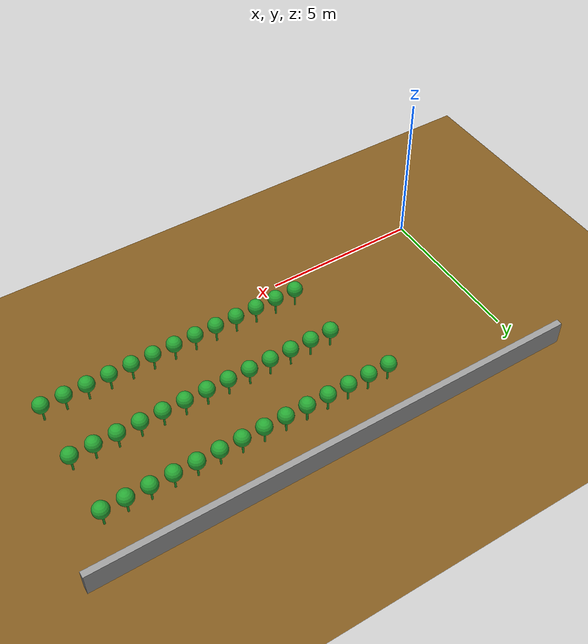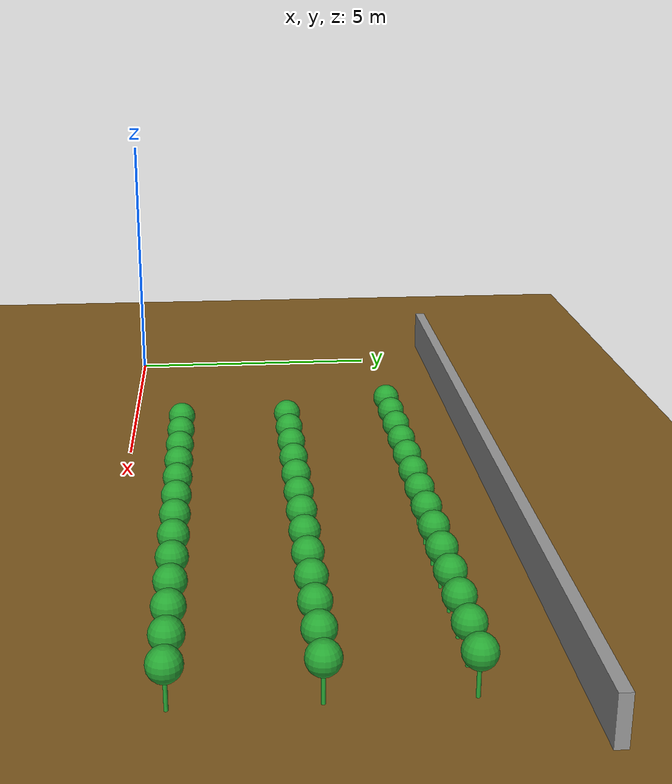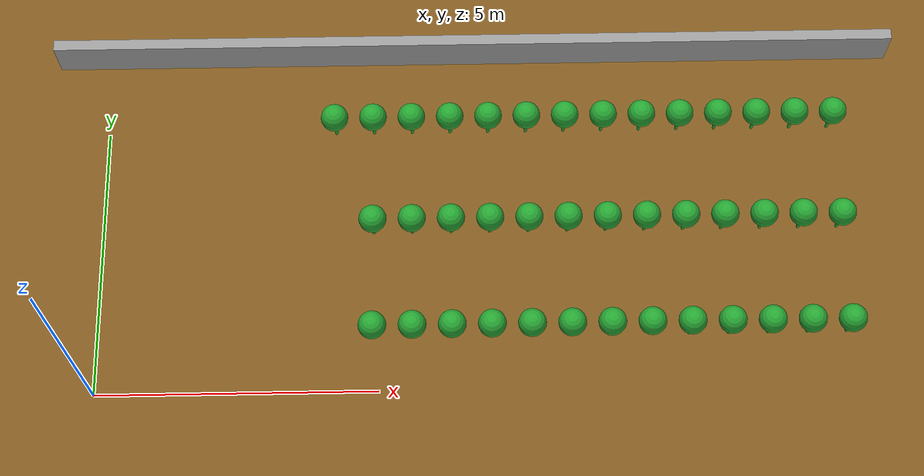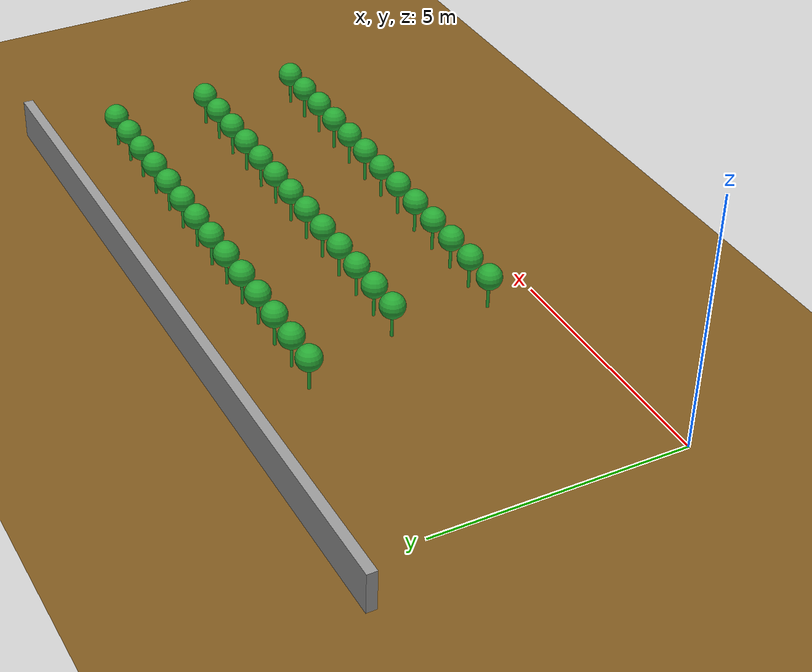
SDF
<sdf version="1.7">
 <world name="crop_field">
  <model name="ground_plane">
   <static>1</static>
   <link name="link">
    <collision name="collision">
     <geometry><plane><normal>0 0 1</normal><size>100 100</size></plane></geometry>
     <surface><friction><ode><mu>100</mu><mu2>50</mu2></ode></friction></surface>
    </collision>
    <visual name="visual">
     <cast_shadows>0</cast_shadows>
     <geometry><plane><normal>0 0 1</normal><size>100 100</size></plane></geometry>
     <material><ambient>0.45 0.30 0.10 1</ambient><diffuse>0.50 0.35 0.12 1</diffuse></material>
    </visual>
   </link>
  </model>
  <model name="row4_plant_07">
   <static>1</static>
   <link name="link">
    <collision name="c">
     <geometry><cylinder><radius>0.05</radius><length>0.8</length></cylinder></geometry>
    </collision>
    <visual name="stem">
     <pose>0 0 -0.125 0 0 0</pose>
     <geometry><cylinder><radius>0.03</radius><length>0.55</length></cylinder></geometry>
     <material>
      <script><uri>file://media/materials/scripts/gazebo.material</uri><name>Gazebo/Green</name></script>
     </material>
    </visual>
    <visual name="canopy">
     <pose>0 0 0.275 0 0 0</pose>
     <geometry><sphere><radius>0.25</radius></sphere></geometry>
     <material>
      <script><uri>file://media/materials/scripts/gazebo.material</uri><name>Gazebo/Green</name></script>
     </material>
    </visual>
   </link>
   <pose>4.9 1.0 0.4 0 0 0</pose>
  </model>
  <model name="row4_plant_08">
   <static>1</static>
   <link name="link">
    <collision name="c">
     <geometry><cylinder><radius>0.05</radius><length>0.8</length></cylinder></geometry>
    </collision>
    <visual name="stem">
     <pose>0 0 -0.125 0 0 0</pose>
     <geometry><cylinder><radius>0.03</radius><length>0.55</length></cylinder></geometry>
     <material>
      <script><uri>file://media/materials/scripts/gazebo.material</uri><name>Gazebo/Green</name></script>
     </material>
    </visual>
    <visual name="canopy">
     <pose>0 0 0.275 0 0 0</pose>
     <geometry><sphere><radius>0.25</radius></sphere></geometry>
     <material>
      <script><uri>file://media/materials/scripts/gazebo.material</uri><name>Gazebo/Green</name></script>
     </material>
    </visual>
   </link>
   <pose>5.6 1.0 0.4 0 0 0</pose>
  </model>
  <model name="row4_plant_09">
   <static>1</static>
   <link name="link">
    <collision name="c">
     <geometry><cylinder><radius>0.05</radius><length>0.8</length></cylinder></geometry>
    </collision>
    <visual name="stem">
     <pose>0 0 -0.125 0 0 0</pose>
     <geometry><cylinder><radius>0.03</radius><length>0.55</length></cylinder></geometry>
     <material>
      <script><uri>file://media/materials/scripts/gazebo.material</uri><name>Gazebo/Green</name></script>
     </material>
    </visual>
    <visual name="canopy">
     <pose>0 0 0.275 0 0 0</pose>
     <geometry><sphere><radius>0.25</radius></sphere></geometry>
     <material>
      <script><uri>file://media/materials/scripts/gazebo.material</uri><name>Gazebo/Green</name></script>
     </material>
    </visual>
   </link>
   <pose>6.3 1.0 0.4 0 0 0</pose>
  </model>
  <model name="row4_plant_10">
   <static>1</static>
   <link name="link">
    <collision name="c">
     <geometry><cylinder><radius>0.05</radius><length>0.8</length></cylinder></geometry>
    </collision>
    <visual name="stem">
     <pose>0 0 -0.125 0 0 0</pose>
     <geometry><cylinder><radius>0.03</radius><length>0.55</length></cylinder></geometry>
     <material>
      <script><uri>file://media/materials/scripts/gazebo.material</uri><name>Gazebo/Green</name></script>
     </material>
    </visual>
    <visual name="canopy">
     <pose>0 0 0.275 0 0 0</pose>
     <geometry><sphere><radius>0.25</radius></sphere></geometry>
     <material>
      <script><uri>file://media/materials/scripts/gazebo.material</uri><name>Gazebo/Green</name></script>
     </material>
    </visual>
   </link>
   <pose>7.0 1.0 0.4 0 0 0</pose>
  </model>
  <model name="row4_plant_11">
   <static>1</static>
   <link name="link">
    <collision name="c">
     <geometry><cylinder><radius>0.05</radius><length>0.8</length></cylinder></geometry>
    </collision>
    <visual name="stem">
     <pose>0 0 -0.125 0 0 0</pose>
     <geometry><cylinder><radius>0.03</radius><length>0.55</length></cylinder></geometry>
     <material>
      <script><uri>file://media/materials/scripts/gazebo.material</uri><name>Gazebo/Green</name></script>
     </material>
    </visual>
    <visual name="canopy">
     <pose>0 0 0.275 0 0 0</pose>
     <geometry><sphere><radius>0.25</radius></sphere></geometry>
     <material>
      <script><uri>file://media/materials/scripts/gazebo.material</uri><name>Gazebo/Green</name></script>
     </material>
    </visual>
   </link>
   <pose>7.7 1.0 0.4 0 0 0</pose>
  </model>
  <model name="row4_plant_12">
   <static>1</static>
   <link name="link">
    <collision name="c">
     <geometry><cylinder><radius>0.05</radius><length>0.8</length></cylinder></geometry>
    </collision>
    <visual name="stem">
     <pose>0 0 -0.125 0 0 0</pose>
     <geometry><cylinder><radius>0.03</radius><length>0.55</length></cylinder></geometry>
     <material>
      <script><uri>file://media/materials/scripts/gazebo.material</uri><name>Gazebo/Green</name></script>
     </material>
    </visual>
    <visual name="canopy">
     <pose>0 0 0.275 0 0 0</pose>
     <geometry><sphere><radius>0.25</radius></sphere></geometry>
     <material>
      <script><uri>file://media/materials/scripts/gazebo.material</uri><name>Gazebo/Green</name></script>
     </material>
    </visual>
   </link>
   <pose>8.4 1.0 0.4 0 0 0</pose>
  </model>
  <model name="row4_plant_13">
   <static>1</static>
   <link name="link">
    <collision name="c">
     <geometry><cylinder><radius>0.05</radius><length>0.8</length></cylinder></geometry>
    </collision>
    <visual name="stem">
     <pose>0 0 -0.125 0 0 0</pose>
     <geometry><cylinder><radius>0.03</radius><length>0.55</length></cylinder></geometry>
     <material>
      <script><uri>file://media/materials/scripts/gazebo.material</uri><name>Gazebo/Green</name></script>
     </material>
    </visual>
    <visual name="canopy">
     <pose>0 0 0.275 0 0 0</pose>
     <geometry><sphere><radius>0.25</radius></sphere></geometry>
     <material>
      <script><uri>file://media/materials/scripts/gazebo.material</uri><name>Gazebo/Green</name></script>
     </material>
    </visual>
   </link>
   <pose>9.1 1.0 0.4 0 0 0</pose>
  </model>
  <model name="row4_plant_14">
   <static>1</static>
   <link name="link">
    <collision name="c">
     <geometry><cylinder><radius>0.05</radius><length>0.8</length></cylinder></geometry>
    </collision>
    <visual name="stem">
     <pose>0 0 -0.125 0 0 0</pose>
     <geometry><cylinder><radius>0.03</radius><length>0.55</length></cylinder></geometry>
     <material>
      <script><uri>file://media/materials/scripts/gazebo.material</uri><name>Gazebo/Green</name></script>
     </material>
    </visual>
    <visual name="canopy">
     <pose>0 0 0.275 0 0 0</pose>
     <geometry><sphere><radius>0.25</radius></sphere></geometry>
     <material>
      <script><uri>file://media/materials/scripts/gazebo.material</uri><name>Gazebo/Green</name></script>
     </material>
    </visual>
   </link>
   <pose>9.8 1.0 0.4 0 0 0</pose>
  </model>
  <model name="row4_plant_15">
   <static>1</static>
   <link name="link">
    <collision name="c">
     <geometry><cylinder><radius>0.05</radius><length>0.8</length></cylinder></geometry>
    </collision>
    <visual name="stem">
     <pose>0 0 -0.125 0 0 0</pose>
     <geometry><cylinder><radius>0.03</radius><length>0.55</length></cylinder></geometry>
     <material>
      <script><uri>file://media/materials/scripts/gazebo.material</uri><name>Gazebo/Green</name></script>
     </material>
    </visual>
    <visual name="canopy">
     <pose>0 0 0.275 0 0 0</pose>
     <geometry><sphere><radius>0.25</radius></sphere></geometry>
     <material>
      <script><uri>file://media/materials/scripts/gazebo.material</uri><name>Gazebo/Green</name></script>
     </material>
    </visual>
   </link>
   <pose>10.5 1.0 0.4 0 0 0</pose>
  </model>
  <model name="row4_plant_16">
   <static>1</static>
   <link name="link">
    <collision name="c">
     <geometry><cylinder><radius>0.05</radius><length>0.8</length></cylinder></geometry>
    </collision>
    <visual name="stem">
     <pose>0 0 -0.125 0 0 0</pose>
     <geometry><cylinder><radius>0.03</radius><length>0.55</length></cylinder></geometry>
     <material>
      <script><uri>file://media/materials/scripts/gazebo.material</uri><name>Gazebo/Green</name></script>
     </material>
    </visual>
    <visual name="canopy">
     <pose>0 0 0.275 0 0 0</pose>
     <geometry><sphere><radius>0.25</radius></sphere></geometry>
     <material>
      <script><uri>file://media/materials/scripts/gazebo.material</uri><name>Gazebo/Green</name></script>
     </material>
    </visual>
   </link>
   <pose>11.2 1.0 0.4 0 0 0</pose>
  </model>
  <model name="row4_plant_17">
   <static>1</static>
   <link name="link">
    <collision name="c">
     <geometry><cylinder><radius>0.05</radius><length>0.8</length></cylinder></geometry>
    </collision>
    <visual name="stem">
     <pose>0 0 -0.125 0 0 0</pose>
     <geometry><cylinder><radius>0.03</radius><length>0.55</length></cylinder></geometry>
     <material>
      <script><uri>file://media/materials/scripts/gazebo.material</uri><name>Gazebo/Green</name></script>
     </material>
    </visual>
    <visual name="canopy">
     <pose>0 0 0.275 0 0 0</pose>
     <geometry><sphere><radius>0.25</radius></sphere></geometry>
     <material>
      <script><uri>file://media/materials/scripts/gazebo.material</uri><name>Gazebo/Green</name></script>
     </material>
    </visual>
   </link>
   <pose>11.9 1.0 0.4 0 0 0</pose>
  </model>
  <model name="row4_plant_18">
   <static>1</static>
   <link name="link">
    <collision name="c">
     <geometry><cylinder><radius>0.05</radius><length>0.8</length></cylinder></geometry>
    </collision>
    <visual name="stem">
     <pose>0 0 -0.125 0 0 0</pose>
     <geometry><cylinder><radius>0.03</radius><length>0.55</length></cylinder></geometry>
     <material>
      <script><uri>file://media/materials/scripts/gazebo.material</uri><name>Gazebo/Green</name></script>
     </material>
    </visual>
    <visual name="canopy">
     <pose>0 0 0.275 0 0 0</pose>
     <geometry><sphere><radius>0.25</radius></sphere></geometry>
     <material>
      <script><uri>file://media/materials/scripts/gazebo.material</uri><name>Gazebo/Green</name></script>
     </material>
    </visual>
   </link>
   <pose>12.6 1.0 0.4 0 0 0</pose>
  </model>
  <model name="row4_plant_19">
   <static>1</static>
   <link name="link">
    <collision name="c">
     <geometry><cylinder><radius>0.05</radius><length>0.8</length></cylinder></geometry>
    </collision>
    <visual name="stem">
     <pose>0 0 -0.125 0 0 0</pose>
     <geometry><cylinder><radius>0.03</radius><length>0.55</length></cylinder></geometry>
     <material>
      <script><uri>file://media/materials/scripts/gazebo.material</uri><name>Gazebo/Green</name></script>
     </material>
    </visual>
    <visual name="canopy">
     <pose>0 0 0.275 0 0 0</pose>
     <geometry><sphere><radius>0.25</radius></sphere></geometry>
     <material>
      <script><uri>file://media/materials/scripts/gazebo.material</uri><name>Gazebo/Green</name></script>
     </material>
    </visual>
   </link>
   <pose>13.3 1.0 0.4 0 0 0</pose>
  </model>
  <model name="row5_plant_07">
   <static>1</static>
   <link name="link">
    <collision name="c">
     <geometry><cylinder><radius>0.05</radius><length>0.8</length></cylinder></geometry>
    </collision>
    <visual name="stem">
     <pose>0 0 -0.125 0 0 0</pose>
     <geometry><cylinder><radius>0.03</radius><length>0.55</length></cylinder></geometry>
     <material>
      <script><uri>file://media/materials/scripts/gazebo.material</uri><name>Gazebo/Green</name></script>
     </material>
    </visual>
    <visual name="canopy">
     <pose>0 0 0.275 0 0 0</pose>
     <geometry><sphere><radius>0.25</radius></sphere></geometry>
     <material>
      <script><uri>file://media/materials/scripts/gazebo.material</uri><name>Gazebo/Green</name></script>
     </material>
    </visual>
   </link>
   <pose>4.9 3.0 0.4 0 0 0</pose>
  </model>
  <model name="row5_plant_08">
   <static>1</static>
   <link name="link">
    <collision name="c">
     <geometry><cylinder><radius>0.05</radius><length>0.8</length></cylinder></geometry>
    </collision>
    <visual name="stem">
     <pose>0 0 -0.125 0 0 0</pose>
     <geometry><cylinder><radius>0.03</radius><length>0.55</length></cylinder></geometry>
     <material>
      <script><uri>file://media/materials/scripts/gazebo.material</uri><name>Gazebo/Green</name></script>
     </material>
    </visual>
    <visual name="canopy">
     <pose>0 0 0.275 0 0 0</pose>
     <geometry><sphere><radius>0.25</radius></sphere></geometry>
     <material>
      <script><uri>file://media/materials/scripts/gazebo.material</uri><name>Gazebo/Green</name></script>
     </material>
    </visual>
   </link>
   <pose>5.6 3.0 0.4 0 0 0</pose>
  </model>
  <model name="row5_plant_09">
   <static>1</static>
   <link name="link">
    <collision name="c">
     <geometry><cylinder><radius>0.05</radius><length>0.8</length></cylinder></geometry>
    </collision>
    <visual name="stem">
     <pose>0 0 -0.125 0 0 0</pose>
     <geometry><cylinder><radius>0.03</radius><length>0.55</length></cylinder></geometry>
     <material>
      <script><uri>file://media/materials/scripts/gazebo.material</uri><name>Gazebo/Green</name></script>
     </material>
    </visual>
    <visual name="canopy">
     <pose>0 0 0.275 0 0 0</pose>
     <geometry><sphere><radius>0.25</radius></sphere></geometry>
     <material>
      <script><uri>file://media/materials/scripts/gazebo.material</uri><name>Gazebo/Green</name></script>
     </material>
    </visual>
   </link>
   <pose>6.3 3.0 0.4 0 0 0</pose>
  </model>
  <model name="row5_plant_10">
   <static>1</static>
   <link name="link">
    <collision name="c">
     <geometry><cylinder><radius>0.05</radius><length>0.8</length></cylinder></geometry>
    </collision>
    <visual name="stem">
     <pose>0 0 -0.125 0 0 0</pose>
     <geometry><cylinder><radius>0.03</radius><length>0.55</length></cylinder></geometry>
     <material>
      <script><uri>file://media/materials/scripts/gazebo.material</uri><name>Gazebo/Green</name></script>
     </material>
    </visual>
    <visual name="canopy">
     <pose>0 0 0.275 0 0 0</pose>
     <geometry><sphere><radius>0.25</radius></sphere></geometry>
     <material>
      <script><uri>file://media/materials/scripts/gazebo.material</uri><name>Gazebo/Green</name></script>
     </material>
    </visual>
   </link>
   <pose>7.0 3.0 0.4 0 0 0</pose>
  </model>
  <model name="row5_plant_11">
   <static>1</static>
   <link name="link">
    <collision name="c">
     <geometry><cylinder><radius>0.05</radius><length>0.8</length></cylinder></geometry>
    </collision>
    <visual name="stem">
     <pose>0 0 -0.125 0 0 0</pose>
     <geometry><cylinder><radius>0.03</radius><length>0.55</length></cylinder></geometry>
     <material>
      <script><uri>file://media/materials/scripts/gazebo.material</uri><name>Gazebo/Green</name></script>
     </material>
    </visual>
    <visual name="canopy">
     <pose>0 0 0.275 0 0 0</pose>
     <geometry><sphere><radius>0.25</radius></sphere></geometry>
     <material>
      <script><uri>file://media/materials/scripts/gazebo.material</uri><name>Gazebo/Green</name></script>
     </material>
    </visual>
   </link>
   <pose>7.7 3.0 0.4 0 0 0</pose>
  </model>
  <model name="row5_plant_12">
   <static>1</static>
   <link name="link">
    <collision name="c">
     <geometry><cylinder><radius>0.05</radius><length>0.8</length></cylinder></geometry>
    </collision>
    <visual name="stem">
     <pose>0 0 -0.125 0 0 0</pose>
     <geometry><cylinder><radius>0.03</radius><length>0.55</length></cylinder></geometry>
     <material>
      <script><uri>file://media/materials/scripts/gazebo.material</uri><name>Gazebo/Green</name></script>
     </material>
    </visual>
    <visual name="canopy">
     <pose>0 0 0.275 0 0 0</pose>
     <geometry><sphere><radius>0.25</radius></sphere></geometry>
     <material>
      <script><uri>file://media/materials/scripts/gazebo.material</uri><name>Gazebo/Green</name></script>
     </material>
    </visual>
   </link>
   <pose>8.4 3.0 0.4 0 0 0</pose>
  </model>
  <model name="row5_plant_13">
   <static>1</static>
   <link name="link">
    <collision name="c">
     <geometry><cylinder><radius>0.05</radius><length>0.8</length></cylinder></geometry>
    </collision>
    <visual name="stem">
     <pose>0 0 -0.125 0 0 0</pose>
     <geometry><cylinder><radius>0.03</radius><length>0.55</length></cylinder></geometry>
     <material>
      <script><uri>file://media/materials/scripts/gazebo.material</uri><name>Gazebo/Green</name></script>
     </material>
    </visual>
    <visual name="canopy">
     <pose>0 0 0.275 0 0 0</pose>
     <geometry><sphere><radius>0.25</radius></sphere></geometry>
     <material>
      <script><uri>file://media/materials/scripts/gazebo.material</uri><name>Gazebo/Green</name></script>
     </material>
    </visual>
   </link>
   <pose>9.1 3.0 0.4 0 0 0</pose>
  </model>
  <model name="row5_plant_14">
   <static>1</static>
   <link name="link">
    <collision name="c">
     <geometry><cylinder><radius>0.05</radius><length>0.8</length></cylinder></geometry>
    </collision>
    <visual name="stem">
     <pose>0 0 -0.125 0 0 0</pose>
     <geometry><cylinder><radius>0.03</radius><length>0.55</length></cylinder></geometry>
     <material>
      <script><uri>file://media/materials/scripts/gazebo.material</uri><name>Gazebo/Green</name></script>
     </material>
    </visual>
    <visual name="canopy">
     <pose>0 0 0.275 0 0 0</pose>
     <geometry><sphere><radius>0.25</radius></sphere></geometry>
     <material>
      <script><uri>file://media/materials/scripts/gazebo.material</uri><name>Gazebo/Green</name></script>
     </material>
    </visual>
   </link>
   <pose>9.8 3.0 0.4 0 0 0</pose>
  </model>
  <model name="row5_plant_15">
   <static>1</static>
   <link name="link">
    <collision name="c">
     <geometry><cylinder><radius>0.05</radius><length>0.8</length></cylinder></geometry>
    </collision>
    <visual name="stem">
     <pose>0 0 -0.125 0 0 0</pose>
     <geometry><cylinder><radius>0.03</radius><length>0.55</length></cylinder></geometry>
     <material>
      <script><uri>file://media/materials/scripts/gazebo.material</uri><name>Gazebo/Green</name></script>
     </material>
    </visual>
    <visual name="canopy">
     <pose>0 0 0.275 0 0 0</pose>
     <geometry><sphere><radius>0.25</radius></sphere></geometry>
     <material>
      <script><uri>file://media/materials/scripts/gazebo.material</uri><name>Gazebo/Green</name></script>
     </material>
    </visual>
   </link>
   <pose>10.5 3.0 0.4 0 0 0</pose>
  </model>
  <model name="row5_plant_16">
   <static>1</static>
   <link name="link">
    <collision name="c">
     <geometry><cylinder><radius>0.05</radius><length>0.8</length></cylinder></geometry>
    </collision>
    <visual name="stem">
     <pose>0 0 -0.125 0 0 0</pose>
     <geometry><cylinder><radius>0.03</radius><length>0.55</length></cylinder></geometry>
     <material>
      <script><uri>file://media/materials/scripts/gazebo.material</uri><name>Gazebo/Green</name></script>
     </material>
    </visual>
    <visual name="canopy">
     <pose>0 0 0.275 0 0 0</pose>
     <geometry><sphere><radius>0.25</radius></sphere></geometry>
     <material>
      <script><uri>file://media/materials/scripts/gazebo.material</uri><name>Gazebo/Green</name></script>
     </material>
    </visual>
   </link>
   <pose>11.2 3.0 0.4 0 0 0</pose>
  </model>
  <model name="row5_plant_17">
   <static>1</static>
   <link name="link">
    <collision name="c">
     <geometry><cylinder><radius>0.05</radius><length>0.8</length></cylinder></geometry>
    </collision>
    <visual name="stem">
     <pose>0 0 -0.125 0 0 0</pose>
     <geometry><cylinder><radius>0.03</radius><length>0.55</length></cylinder></geometry>
     <material>
      <script><uri>file://media/materials/scripts/gazebo.material</uri><name>Gazebo/Green</name></script>
     </material>
    </visual>
    <visual name="canopy">
     <pose>0 0 0.275 0 0 0</pose>
     <geometry><sphere><radius>0.25</radius></sphere></geometry>
     <material>
      <script><uri>file://media/materials/scripts/gazebo.material</uri><name>Gazebo/Green</name></script>
     </material>
    </visual>
   </link>
   <pose>11.9 3.0 0.4 0 0 0</pose>
  </model>
  <model name="row5_plant_18">
   <static>1</static>
   <link name="link">
    <collision name="c">
     <geometry><cylinder><radius>0.05</radius><length>0.8</length></cylinder></geometry>
    </collision>
    <visual name="stem">
     <pose>0 0 -0.125 0 0 0</pose>
     <geometry><cylinder><radius>0.03</radius><length>0.55</length></cylinder></geometry>
     <material>
      <script><uri>file://media/materials/scripts/gazebo.material</uri><name>Gazebo/Green</name></script>
     </material>
    </visual>
    <visual name="canopy">
     <pose>0 0 0.275 0 0 0</pose>
     <geometry><sphere><radius>0.25</radius></sphere></geometry>
     <material>
      <script><uri>file://media/materials/scripts/gazebo.material</uri><name>Gazebo/Green</name></script>
     </material>
    </visual>
   </link>
   <pose>12.6 3.0 0.4 0 0 0</pose>
  </model>
  <model name="row5_plant_19">
   <static>1</static>
   <link name="link">
    <collision name="c">
     <geometry><cylinder><radius>0.05</radius><length>0.8</length></cylinder></geometry>
    </collision>
    <visual name="stem">
     <pose>0 0 -0.125 0 0 0</pose>
     <geometry><cylinder><radius>0.03</radius><length>0.55</length></cylinder></geometry>
     <material>
      <script><uri>file://media/materials/scripts/gazebo.material</uri><name>Gazebo/Green</name></script>
     </material>
    </visual>
    <visual name="canopy">
     <pose>0 0 0.275 0 0 0</pose>
     <geometry><sphere><radius>0.25</radius></sphere></geometry>
     <material>
      <script><uri>file://media/materials/scripts/gazebo.material</uri><name>Gazebo/Green</name></script>
     </material>
    </visual>
   </link>
   <pose>13.3 3.0 0.4 0 0 0</pose>
  </model>
  <model name="row6_plant_06">
   <static>1</static>
   <link name="link">
    <collision name="c">
     <geometry><cylinder><radius>0.05</radius><length>0.8</length></cylinder></geometry>
    </collision>
    <visual name="stem">
     <pose>0 0 -0.125 0 0 0</pose>
     <geometry><cylinder><radius>0.03</radius><length>0.55</length></cylinder></geometry>
     <material>
      <script><uri>file://media/materials/scripts/gazebo.material</uri><name>Gazebo/Green</name></script>
     </material>
    </visual>
    <visual name="canopy">
     <pose>0 0 0.275 0 0 0</pose>
     <geometry><sphere><radius>0.25</radius></sphere></geometry>
     <material>
      <script><uri>file://media/materials/scripts/gazebo.material</uri><name>Gazebo/Green</name></script>
     </material>
    </visual>
   </link>
   <pose>4.2 5.0 0.4 0 0 0</pose>
  </model>
  <model name="row6_plant_07">
   <static>1</static>
   <link name="link">
    <collision name="c">
     <geometry><cylinder><radius>0.05</radius><length>0.8</length></cylinder></geometry>
    </collision>
    <visual name="stem">
     <pose>0 0 -0.125 0 0 0</pose>
     <geometry><cylinder><radius>0.03</radius><length>0.55</length></cylinder></geometry>
     <material>
      <script><uri>file://media/materials/scripts/gazebo.material</uri><name>Gazebo/Green</name></script>
     </material>
    </visual>
    <visual name="canopy">
     <pose>0 0 0.275 0 0 0</pose>
     <geometry><sphere><radius>0.25</radius></sphere></geometry>
     <material>
      <script><uri>file://media/materials/scripts/gazebo.material</uri><name>Gazebo/Green</name></script>
     </material>
    </visual>
   </link>
   <pose>4.9 5.0 0.4 0 0 0</pose>
  </model>
  <model name="row6_plant_08">
   <static>1</static>
   <link name="link">
    <collision name="c">
     <geometry><cylinder><radius>0.05</radius><length>0.8</length></cylinder></geometry>
    </collision>
    <visual name="stem">
     <pose>0 0 -0.125 0 0 0</pose>
     <geometry><cylinder><radius>0.03</radius><length>0.55</length></cylinder></geometry>
     <material>
      <script><uri>file://media/materials/scripts/gazebo.material</uri><name>Gazebo/Green</name></script>
     </material>
    </visual>
    <visual name="canopy">
     <pose>0 0 0.275 0 0 0</pose>
     <geometry><sphere><radius>0.25</radius></sphere></geometry>
     <material>
      <script><uri>file://media/materials/scripts/gazebo.material</uri><name>Gazebo/Green</name></script>
     </material>
    </visual>
   </link>
   <pose>5.6 5.0 0.4 0 0 0</pose>
  </model>
  <model name="row6_plant_09">
   <static>1</static>
   <link name="link">
    <collision name="c">
     <geometry><cylinder><radius>0.05</radius><length>0.8</length></cylinder></geometry>
    </collision>
    <visual name="stem">
     <pose>0 0 -0.125 0 0 0</pose>
     <geometry><cylinder><radius>0.03</radius><length>0.55</length></cylinder></geometry>
     <material>
      <script><uri>file://media/materials/scripts/gazebo.material</uri><name>Gazebo/Green</name></script>
     </material>
    </visual>
    <visual name="canopy">
     <pose>0 0 0.275 0 0 0</pose>
     <geometry><sphere><radius>0.25</radius></sphere></geometry>
     <material>
      <script><uri>file://media/materials/scripts/gazebo.material</uri><name>Gazebo/Green</name></script>
     </material>
    </visual>
   </link>
   <pose>6.3 5.0 0.4 0 0 0</pose>
  </model>
  <model name="row6_plant_10">
   <static>1</static>
   <link name="link">
    <collision name="c">
     <geometry><cylinder><radius>0.05</radius><length>0.8</length></cylinder></geometry>
    </collision>
    <visual name="stem">
     <pose>0 0 -0.125 0 0 0</pose>
     <geometry><cylinder><radius>0.03</radius><length>0.55</length></cylinder></geometry>
     <material>
      <script><uri>file://media/materials/scripts/gazebo.material</uri><name>Gazebo/Green</name></script>
     </material>
    </visual>
    <visual name="canopy">
     <pose>0 0 0.275 0 0 0</pose>
     <geometry><sphere><radius>0.25</radius></sphere></geometry>
     <material>
      <script><uri>file://media/materials/scripts/gazebo.material</uri><name>Gazebo/Green</name></script>
     </material>
    </visual>
   </link>
   <pose>7.0 5.0 0.4 0 0 0</pose>
  </model>
  <model name="row6_plant_11">
   <static>1</static>
   <link name="link">
    <collision name="c">
     <geometry><cylinder><radius>0.05</radius><length>0.8</length></cylinder></geometry>
    </collision>
    <visual name="stem">
     <pose>0 0 -0.125 0 0 0</pose>
     <geometry><cylinder><radius>0.03</radius><length>0.55</length></cylinder></geometry>
     <material>
      <script><uri>file://media/materials/scripts/gazebo.material</uri><name>Gazebo/Green</name></script>
     </material>
    </visual>
    <visual name="canopy">
     <pose>0 0 0.275 0 0 0</pose>
     <geometry><sphere><radius>0.25</radius></sphere></geometry>
     <material>
      <script><uri>file://media/materials/scripts/gazebo.material</uri><name>Gazebo/Green</name></script>
     </material>
    </visual>
   </link>
   <pose>7.7 5.0 0.4 0 0 0</pose>
  </model>
  <model name="row6_plant_12">
   <static>1</static>
   <link name="link">
    <collision name="c">
     <geometry><cylinder><radius>0.05</radius><length>0.8</length></cylinder></geometry>
    </collision>
    <visual name="stem">
     <pose>0 0 -0.125 0 0 0</pose>
     <geometry><cylinder><radius>0.03</radius><length>0.55</length></cylinder></geometry>
     <material>
      <script><uri>file://media/materials/scripts/gazebo.material</uri><name>Gazebo/Green</name></script>
     </material>
    </visual>
    <visual name="canopy">
     <pose>0 0 0.275 0 0 0</pose>
     <geometry><sphere><radius>0.25</radius></sphere></geometry>
     <material>
      <script><uri>file://media/materials/scripts/gazebo.material</uri><name>Gazebo/Green</name></script>
     </material>
    </visual>
   </link>
   <pose>8.4 5.0 0.4 0 0 0</pose>
  </model>
  <model name="row6_plant_13">
   <static>1</static>
   <link name="link">
    <collision name="c">
     <geometry><cylinder><radius>0.05</radius><length>0.8</length></cylinder></geometry>
    </collision>
    <visual name="stem">
     <pose>0 0 -0.125 0 0 0</pose>
     <geometry><cylinder><radius>0.03</radius><length>0.55</length></cylinder></geometry>
     <material>
      <script><uri>file://media/materials/scripts/gazebo.material</uri><name>Gazebo/Green</name></script>
     </material>
    </visual>
    <visual name="canopy">
     <pose>0 0 0.275 0 0 0</pose>
     <geometry><sphere><radius>0.25</radius></sphere></geometry>
     <material>
      <script><uri>file://media/materials/scripts/gazebo.material</uri><name>Gazebo/Green</name></script>
     </material>
    </visual>
   </link>
   <pose>9.1 5.0 0.4 0 0 0</pose>
  </model>
  <model name="row6_plant_14">
   <static>1</static>
   <link name="link">
    <collision name="c">
     <geometry><cylinder><radius>0.05</radius><length>0.8</length></cylinder></geometry>
    </collision>
    <visual name="stem">
     <pose>0 0 -0.125 0 0 0</pose>
     <geometry><cylinder><radius>0.03</radius><length>0.55</length></cylinder></geometry>
     <material>
      <script><uri>file://media/materials/scripts/gazebo.material</uri><name>Gazebo/Green</name></script>
     </material>
    </visual>
    <visual name="canopy">
     <pose>0 0 0.275 0 0 0</pose>
     <geometry><sphere><radius>0.25</radius></sphere></geometry>
     <material>
      <script><uri>file://media/materials/scripts/gazebo.material</uri><name>Gazebo/Green</name></script>
     </material>
    </visual>
   </link>
   <pose>9.8 5.0 0.4 0 0 0</pose>
  </model>
  <model name="row6_plant_15">
   <static>1</static>
   <link name="link">
    <collision name="c">
     <geometry><cylinder><radius>0.05</radius><length>0.8</length></cylinder></geometry>
    </collision>
    <visual name="stem">
     <pose>0 0 -0.125 0 0 0</pose>
     <geometry><cylinder><radius>0.03</radius><length>0.55</length></cylinder></geometry>
     <material>
      <script><uri>file://media/materials/scripts/gazebo.material</uri><name>Gazebo/Green</name></script>
     </material>
    </visual>
    <visual name="canopy">
     <pose>0 0 0.275 0 0 0</pose>
     <geometry><sphere><radius>0.25</radius></sphere></geometry>
     <material>
      <script><uri>file://media/materials/scripts/gazebo.material</uri><name>Gazebo/Green</name></script>
     </material>
    </visual>
   </link>
   <pose>10.5 5.0 0.4 0 0 0</pose>
  </model>
  <model name="row6_plant_16">
   <static>1</static>
   <link name="link">
    <collision name="c">
     <geometry><cylinder><radius>0.05</radius><length>0.8</length></cylinder></geometry>
    </collision>
    <visual name="stem">
     <pose>0 0 -0.125 0 0 0</pose>
     <geometry><cylinder><radius>0.03</radius><length>0.55</length></cylinder></geometry>
     <material>
      <script><uri>file://media/materials/scripts/gazebo.material</uri><name>Gazebo/Green</name></script>
     </material>
    </visual>
    <visual name="canopy">
     <pose>0 0 0.275 0 0 0</pose>
     <geometry><sphere><radius>0.25</radius></sphere></geometry>
     <material>
      <script><uri>file://media/materials/scripts/gazebo.material</uri><name>Gazebo/Green</name></script>
     </material>
    </visual>
   </link>
   <pose>11.2 5.0 0.4 0 0 0</pose>
  </model>
  <model name="row6_plant_17">
   <static>1</static>
   <link name="link">
    <collision name="c">
     <geometry><cylinder><radius>0.05</radius><length>0.8</length></cylinder></geometry>
    </collision>
    <visual name="stem">
     <pose>0 0 -0.125 0 0 0</pose>
     <geometry><cylinder><radius>0.03</radius><length>0.55</length></cylinder></geometry>
     <material>
      <script><uri>file://media/materials/scripts/gazebo.material</uri><name>Gazebo/Green</name></script>
     </material>
    </visual>
    <visual name="canopy">
     <pose>0 0 0.275 0 0 0</pose>
     <geometry><sphere><radius>0.25</radius></sphere></geometry>
     <material>
      <script><uri>file://media/materials/scripts/gazebo.material</uri><name>Gazebo/Green</name></script>
     </material>
    </visual>
   </link>
   <pose>11.9 5.0 0.4 0 0 0</pose>
  </model>
  <model name="row6_plant_18">
   <static>1</static>
   <link name="link">
    <collision name="c">
     <geometry><cylinder><radius>0.05</radius><length>0.8</length></cylinder></geometry>
    </collision>
    <visual name="stem">
     <pose>0 0 -0.125 0 0 0</pose>
     <geometry><cylinder><radius>0.03</radius><length>0.55</length></cylinder></geometry>
     <material>
      <script><uri>file://media/materials/scripts/gazebo.material</uri><name>Gazebo/Green</name></script>
     </material>
    </visual>
    <visual name="canopy">
     <pose>0 0 0.275 0 0 0</pose>
     <geometry><sphere><radius>0.25</radius></sphere></geometry>
     <material>
      <script><uri>file://media/materials/scripts/gazebo.material</uri><name>Gazebo/Green</name></script>
     </material>
    </visual>
   </link>
   <pose>12.6 5.0 0.4 0 0 0</pose>
  </model>
  <model name="row6_plant_19">
   <static>1</static>
   <link name="link">
    <collision name="c">
     <geometry><cylinder><radius>0.05</radius><length>0.8</length></cylinder></geometry>
    </collision>
    <visual name="stem">
     <pose>0 0 -0.125 0 0 0</pose>
     <geometry><cylinder><radius>0.03</radius><length>0.55</length></cylinder></geometry>
     <material>
      <script><uri>file://media/materials/scripts/gazebo.material</uri><name>Gazebo/Green</name></script>
     </material>
    </visual>
    <visual name="canopy">
     <pose>0 0 0.275 0 0 0</pose>
     <geometry><sphere><radius>0.25</radius></sphere></geometry>
     <material>
      <script><uri>file://media/materials/scripts/gazebo.material</uri><name>Gazebo/Green</name></script>
     </material>
    </visual>
   </link>
   <pose>13.3 5.0 0.4 0 0 0</pose>
  </model>
  <model name="wall_side_right">
   <static>1</static>
   <link name="link">
    <collision name="c"><geometry><box><size>15.5 0.2 0.8</size></box></geometry></collision>
    <visual name="v">
     <geometry><box><size>15.5 0.2 0.8</size></box></geometry>
     <material>
      <script><uri>file://media/materials/scripts/gazebo.material</uri><name>Gazebo/Grey</name></script>
     </material>
    </visual>
   </link>
   <pose>6.75 6.5 0.4 0 0 0</pose>
  </model>
 </world>
</sdf>
